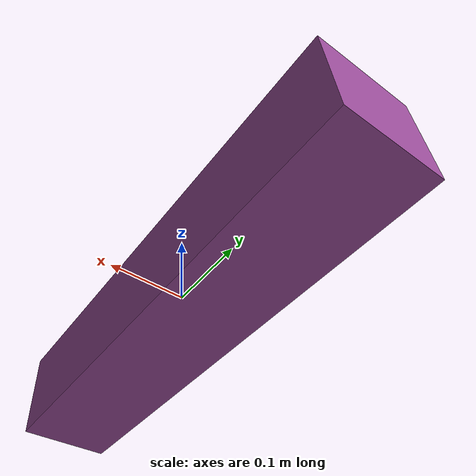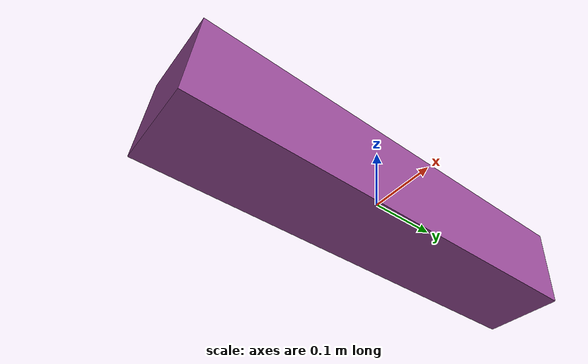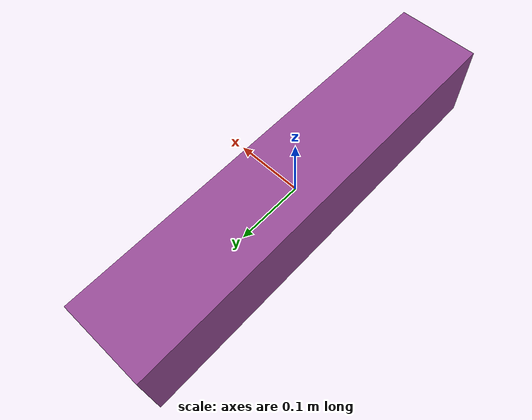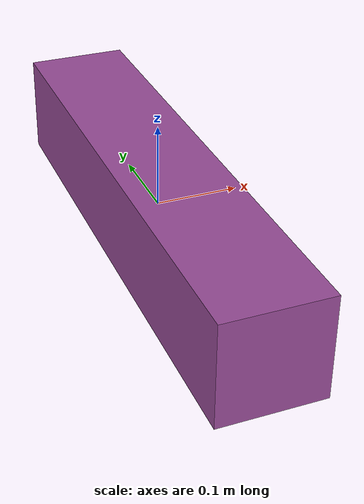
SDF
<?xml version="1.0"?>
<sdf version='1.6'>
  <model name='simple_box'>
    <link name='wooden_box'>
      <pose frame=''>0 0 0 0 0 0</pose>
      <inertial>
        <mass>1.35</mass>
        <inertia>
          <ixx>0.003515625</ixx>
          <ixy>0</ixy>
          <ixz>0</ixz>
          <iyy>0.003515625</iyy>
          <iyz>0</iyz>
          <izz>0.003515625</izz>
        </inertia>
      </inertial>
      <collision name='wooden_box_collision'>
        <pose frame=''>0 0 0.0 0 -0 0</pose>
        <geometry>
          <box>
            <size>0.125 0.625 0.125</size>
          </box>
        </geometry>

        <surface>
          <friction>
            <ode>
              <mu>0.45</mu>
              <mu2>0.35</mu2>
            </ode>
          </friction>
        </surface>
      </collision>

      <visual name='wooden_box_visual'>
        <pose frame=''>0 0 0.0 0 -0. 0</pose> <!-- -0.78539816 for diagonal -->
        <geometry>
          <box>
            <size>0.125 0.625 0.125</size>
          </box>
        </geometry>
        <material name="purple">
          <ambient> 0.6 0.3 0.6 1</ambient>
          <diffuse> 0.6 0.3 0.6 1</diffuse>
        </material>
      </visual>
    </link>
  </model>
</sdf>
